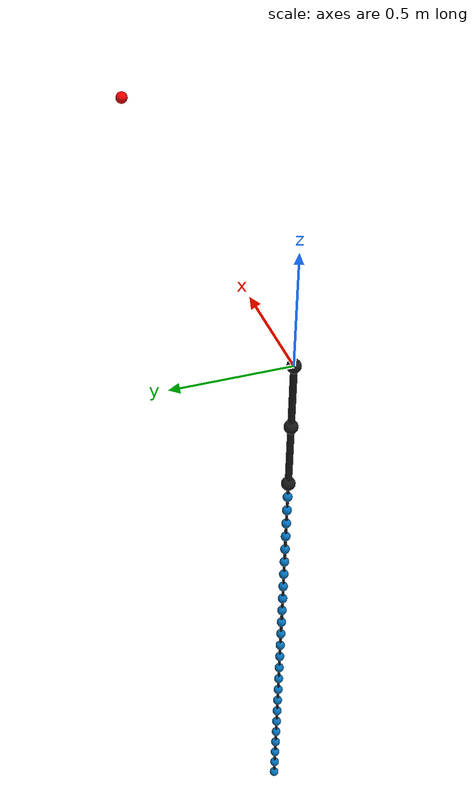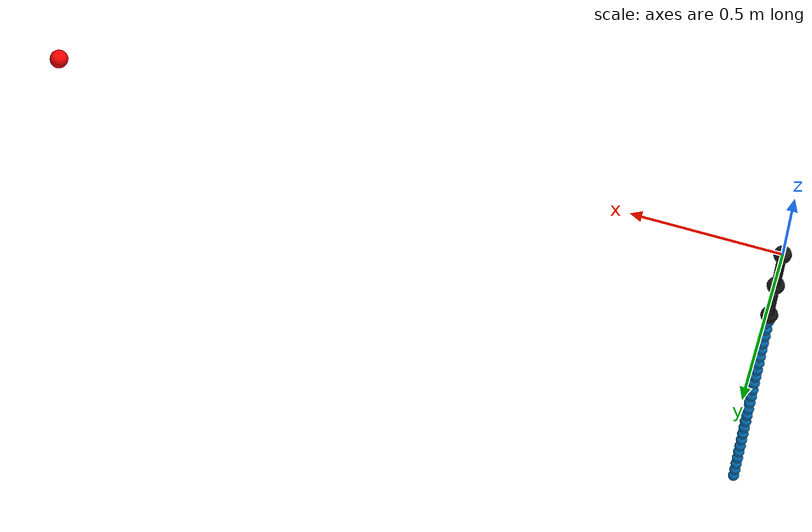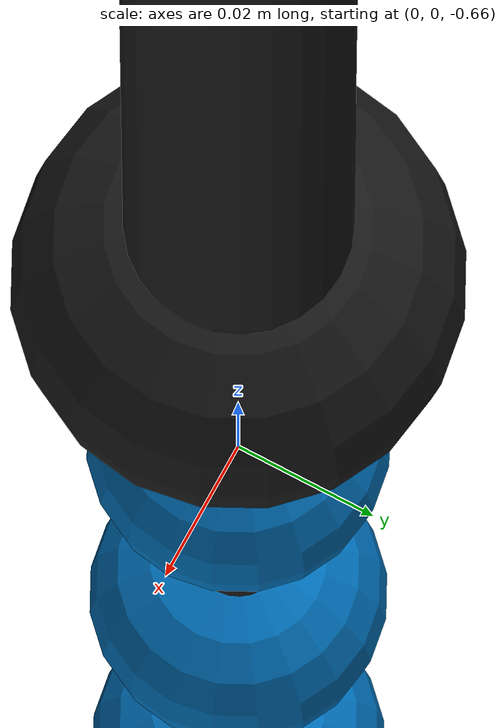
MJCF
<mujoco model="1_3D_model_w_N25">
  <compiler inertiafromgeom="auto" angle="radian" />
   <option timestep="0.0001" iterations="50" solver="PGS" integrator="Euler" gravity="0 0 -9.81" collision="all">
     <flag energy="enable" />
   </option>
   <asset>
		 <texture type="skybox" builtin="checker" rgb1="1 1 1" rgb2="1 1 1" width="200" height="200"  />
     <!-- Joint and Limb Color -->
		 <material name="JointColor" 		 rgba="0.1 0.1 0.1 1" />
		 <material name="LimbColor" 		 rgba="0.1 0.1 0.1 1" />
		 <material name="pointMassColor" rgba="0 0.4470 0.7410 1" />
		 <material name="RefMassColor" 	 rgba="0.2 0.9 0.1 1.0" />

  </asset>

	<visual>
		<global glow="1.0" fovy="45" ipd="0.0"/>
		<headlight specular="0.0 0.0 0.0" diffuse="1.0 1.0 1.0"/>
	</visual>

   <worldbody>
     <body name="cameramover" mocap="true" pos="0 0 0">
        <camera name="mycamera" pos="0.0 2.0 2.0" euler="1.5707 0 0" />
      </body>
      <body name="upperArm" pos="0 0 0" euler="0 0 0">
        <inertial pos="0 0 -0.129" mass="1.595" diaginertia="0.011917 0.011937 0.001325" />
         <geom name="shoulderGEOM" type="sphere" pos="0 0 0" material="JointColor" size="0.0294" mass="0" />
         <joint name="shoulderFlexExt" ref="0" type="hinge" stiffness="0" pos = "0 0 0" axis = "0 -1 0" />
         <joint name='shoulderAddAbd' ref='0'  type='hinge' stiffness='0' pos='0 0 0' axis='-1 0 0' />
         <joint name='shoulderMedLat' ref='0'  type='hinge' stiffness='0' pos='0 0 0' axis=' 0 0 1' />
         <site name="upperArmCOM" pos="0 0 -0.129" />
         <geom type="cylinder" fromto="0 0 0 0 0 -0.294" material="LimbColor" mass="0" size="0.0147" />
         <body name="foreArm" pos="0 0 -0.294" euler="0 0 0">
           <inertial pos="0 0 -0.112" mass="0.869" diaginertia="0.004765 0.004855 0.000472" />
            <geom name="elbowGEOM" type="sphere" pos="0 0 0" material="JointColor" size="0.0294" mass="0" />
            <joint name="elbow" ref="0" type="hinge" stiffness="0" pos="0 0 0" axis="0 -1 0" />
            <geom type="cylinder" fromto="0 0 0 0 0 -0.291" material="LimbColor" mass="0" size="0.0147" />
            <site name="foreArmCOM" pos="0 0 -0.112" />
            <geom name="geom_EE" type="sphere" pos="0 0 -0.291" material="JointColor" size="0.0294" mass="0" />
            <body name="node1" euler="0 0 0" pos="0 0 -0.291">
    					<site name='forForceSensorSite' pos='0 0 0' />   <!-- Attaching force sensor -->
              <joint name="node1JointX" type="hinge" axis="1 0 0" pos="0 0 0" springref="0" stiffness="0" damping="0" />
               <joint name="node1JointY" type="hinge" axis="0 -1 0" pos="0 0 0" springref="0" stiffness="0" damping="0" />
               <geom type="cylinder" fromto="0 0 0 0 0 -0.0720" material="LimbColor" size="0.0060000" mass="0" />
               <geom name="geom1" type="sphere" material="pointMassColor" pos="0 0 -0.0720" size="0.0200000" mass="0.0120000" />
               <body name="node2" euler="0 0 0" pos="0 0 -0.0720">
                 <joint name="node2JointX" type="hinge" axis="1 0 0" pos="0 0 0" springref="0" stiffness="0.242" damping="0.092" />
                  <joint name="node2JointY" type="hinge" axis="0 -1 0" pos="0 0 0" springref="0" stiffness="0.242" damping="0.092" />
                  <geom type="cylinder" fromto="0 0 0 0 0 -0.0720" material="LimbColor" size="0.0060000" mass="0" />
                  <geom name="geom2" type="sphere" material="pointMassColor" pos="0 0 -0.0720" size="0.0200000" mass="0.0120000" />
                  <body name="node3" euler="0 0 0" pos="0 0 -0.0720">
                    <joint name="node3JointX" type="hinge" axis="1 0 0" pos="0 0 0" springref="0" stiffness="0.242" damping="0.092" />
                     <joint name="node3JointY" type="hinge" axis="0 -1 0" pos="0 0 0" springref="0" stiffness="0.242" damping="0.092" />
                     <geom type="cylinder" fromto="0 0 0 0 0 -0.0720" material="LimbColor" size="0.0060000" mass="0" />
                     <geom name="geom3" type="sphere" material="pointMassColor" pos="0 0 -0.0720" size="0.0200000" mass="0.0120000" />
                     <body name="node4" euler="0 0 0" pos="0 0 -0.0720">
                       <joint name="node4JointX" type="hinge" axis="1 0 0" pos="0 0 0" springref="0" stiffness="0.242" damping="0.092" />
                        <joint name="node4JointY" type="hinge" axis="0 -1 0" pos="0 0 0" springref="0" stiffness="0.242" damping="0.092" />
                        <geom type="cylinder" fromto="0 0 0 0 0 -0.0720" material="LimbColor" size="0.0060000" mass="0" />
                        <geom name="geom4" type="sphere" material="pointMassColor" pos="0 0 -0.0720" size="0.0200000" mass="0.0120000" />
                        <body name="node5" euler="0 0 0" pos="0 0 -0.0720">
                          <joint name="node5JointX" type="hinge" axis="1 0 0" pos="0 0 0" springref="0" stiffness="0.242" damping="0.092" />
                           <joint name="node5JointY" type="hinge" axis="0 -1 0" pos="0 0 0" springref="0" stiffness="0.242" damping="0.092" />
                           <geom type="cylinder" fromto="0 0 0 0 0 -0.0720" material="LimbColor" size="0.0060000" mass="0" />
                           <geom name="geom5" type="sphere" material="pointMassColor" pos="0 0 -0.0720" size="0.0200000" mass="0.0120000" />
                           <body name="node6" euler="0 0 0" pos="0 0 -0.0720">
                             <joint name="node6JointX" type="hinge" axis="1 0 0" pos="0 0 0" springref="0" stiffness="0.242" damping="0.092" />
                              <joint name="node6JointY" type="hinge" axis="0 -1 0" pos="0 0 0" springref="0" stiffness="0.242" damping="0.092" />
                              <geom type="cylinder" fromto="0 0 0 0 0 -0.0720" material="LimbColor" size="0.0060000" mass="0" />
                              <geom name="geom6" type="sphere" material="pointMassColor" pos="0 0 -0.0720" size="0.0200000" mass="0.0120000" />
                              <body name="node7" euler="0 0 0" pos="0 0 -0.0720">
                                <joint name="node7JointX" type="hinge" axis="1 0 0" pos="0 0 0" springref="0" stiffness="0.242" damping="0.092" />
                                 <joint name="node7JointY" type="hinge" axis="0 -1 0" pos="0 0 0" springref="0" stiffness="0.242" damping="0.092" />
                                 <geom type="cylinder" fromto="0 0 0 0 0 -0.0720" material="LimbColor" size="0.0060000" mass="0" />
                                 <geom name="geom7" type="sphere" material="pointMassColor" pos="0 0 -0.0720" size="0.0200000" mass="0.0120000" />
                                 <body name="node8" euler="0 0 0" pos="0 0 -0.0720">
                                   <joint name="node8JointX" type="hinge" axis="1 0 0" pos="0 0 0" springref="0" stiffness="0.242" damping="0.092" />
                                    <joint name="node8JointY" type="hinge" axis="0 -1 0" pos="0 0 0" springref="0" stiffness="0.242" damping="0.092" />
                                    <geom type="cylinder" fromto="0 0 0 0 0 -0.0720" material="LimbColor" size="0.0060000" mass="0" />
                                    <geom name="geom8" type="sphere" material="pointMassColor" pos="0 0 -0.0720" size="0.0200000" mass="0.0120000" />
                                    <body name="node9" euler="0 0 0" pos="0 0 -0.0720">
                                      <joint name="node9JointX" type="hinge" axis="1 0 0" pos="0 0 0" springref="0" stiffness="0.242" damping="0.092" />
                                       <joint name="node9JointY" type="hinge" axis="0 -1 0" pos="0 0 0" springref="0" stiffness="0.242" damping="0.092" />
                                       <geom type="cylinder" fromto="0 0 0 0 0 -0.0720" material="LimbColor" size="0.0060000" mass="0" />
                                       <geom name="geom9" type="sphere" material="pointMassColor" pos="0 0 -0.0720" size="0.0200000" mass="0.0120000" />
                                       <body name="node10" euler="0 0 0" pos="0 0 -0.0720">
                                         <joint name="node10JointX" type="hinge" axis="1 0 0" pos="0 0 0" springref="0" stiffness="0.242" damping="0.092" />
                                          <joint name="node10JointY" type="hinge" axis="0 -1 0" pos="0 0 0" springref="0" stiffness="0.242" damping="0.092" />
                                          <geom type="cylinder" fromto="0 0 0 0 0 -0.0720" material="LimbColor" size="0.0060000" mass="0" />
                                          <geom name="geom10" type="sphere" material="pointMassColor" pos="0 0 -0.0720" size="0.0200000" mass="0.0120000" />
                                          <body name="node11" euler="0 0 0" pos="0 0 -0.0720">
                                            <joint name="node11JointX" type="hinge" axis="1 0 0" pos="0 0 0" springref="0" stiffness="0.242" damping="0.092" />
                                             <joint name="node11JointY" type="hinge" axis="0 -1 0" pos="0 0 0" springref="0" stiffness="0.242" damping="0.092" />
                                             <geom type="cylinder" fromto="0 0 0 0 0 -0.0720" material="LimbColor" size="0.0060000" mass="0" />
                                             <geom name="geom11" type="sphere" material="pointMassColor" pos="0 0 -0.0720" size="0.0200000" mass="0.0120000" />
                                             <body name="node12" euler="0 0 0" pos="0 0 -0.0720">
                                               <joint name="node12JointX" type="hinge" axis="1 0 0" pos="0 0 0" springref="0" stiffness="0.242" damping="0.092" />
                                                <joint name="node12JointY" type="hinge" axis="0 -1 0" pos="0 0 0" springref="0" stiffness="0.242" damping="0.092" />
                                                <geom type="cylinder" fromto="0 0 0 0 0 -0.0720" material="LimbColor" size="0.0060000" mass="0" />
                                                <geom name="geom12" type="sphere" material="pointMassColor" pos="0 0 -0.0720" size="0.0200000" mass="0.0120000" />
                                                <body name="node13" euler="0 0 0" pos="0 0 -0.0720">
                                                  <joint name="node13JointX" type="hinge" axis="1 0 0" pos="0 0 0" springref="0" stiffness="0.242" damping="0.092" />
                                                   <joint name="node13JointY" type="hinge" axis="0 -1 0" pos="0 0 0" springref="0" stiffness="0.242" damping="0.092" />
                                                   <geom type="cylinder" fromto="0 0 0 0 0 -0.0720" material="LimbColor" size="0.0060000" mass="0" />
                                                   <geom name="geom13" type="sphere" material="pointMassColor" pos="0 0 -0.0720" size="0.0200000" mass="0.0120000" />
                                                   <body name="node14" euler="0 0 0" pos="0 0 -0.0720">
                                                     <joint name="node14JointX" type="hinge" axis="1 0 0" pos="0 0 0" springref="0" stiffness="0.242" damping="0.092" />
                                                      <joint name="node14JointY" type="hinge" axis="0 -1 0" pos="0 0 0" springref="0" stiffness="0.242" damping="0.092" />
                                                      <geom type="cylinder" fromto="0 0 0 0 0 -0.0720" material="LimbColor" size="0.0060000" mass="0" />
                                                      <geom name="geom14" type="sphere" material="pointMassColor" pos="0 0 -0.0720" size="0.0200000" mass="0.0120000" />
                                                      <body name="node15" euler="0 0 0" pos="0 0 -0.0720">
                                                        <joint name="node15JointX" type="hinge" axis="1 0 0" pos="0 0 0" springref="0" stiffness="0.242" damping="0.092" />
                                                         <joint name="node15JointY" type="hinge" axis="0 -1 0" pos="0 0 0" springref="0" stiffness="0.242" damping="0.092" />
                                                         <geom type="cylinder" fromto="0 0 0 0 0 -0.0720" material="LimbColor" size="0.0060000" mass="0" />
                                                         <geom name="geom15" type="sphere" material="pointMassColor" pos="0 0 -0.0720" size="0.0200000" mass="0.0120000" />
                                                         <body name="node16" euler="0 0 0" pos="0 0 -0.0720">
                                                           <joint name="node16JointX" type="hinge" axis="1 0 0" pos="0 0 0" springref="0" stiffness="0.242" damping="0.092" />
                                                            <joint name="node16JointY" type="hinge" axis="0 -1 0" pos="0 0 0" springref="0" stiffness="0.242" damping="0.092" />
                                                            <geom type="cylinder" fromto="0 0 0 0 0 -0.0720" material="LimbColor" size="0.0060000" mass="0" />
                                                            <geom name="geom16" type="sphere" material="pointMassColor" pos="0 0 -0.0720" size="0.0200000" mass="0.0120000" />
                                                            <body name="node17" euler="0 0 0" pos="0 0 -0.0720">
                                                              <joint name="node17JointX" type="hinge" axis="1 0 0" pos="0 0 0" springref="0" stiffness="0.242" damping="0.092" />
                                                               <joint name="node17JointY" type="hinge" axis="0 -1 0" pos="0 0 0" springref="0" stiffness="0.242" damping="0.092" />
                                                               <geom type="cylinder" fromto="0 0 0 0 0 -0.0720" material="LimbColor" size="0.0060000" mass="0" />
                                                               <geom name="geom17" type="sphere" material="pointMassColor" pos="0 0 -0.0720" size="0.0200000" mass="0.0120000" />
                                                               <body name="node18" euler="0 0 0" pos="0 0 -0.0720">
                                                                 <joint name="node18JointX" type="hinge" axis="1 0 0" pos="0 0 0" springref="0" stiffness="0.242" damping="0.092" />
                                                                  <joint name="node18JointY" type="hinge" axis="0 -1 0" pos="0 0 0" springref="0" stiffness="0.242" damping="0.092" />
                                                                  <geom type="cylinder" fromto="0 0 0 0 0 -0.0720" material="LimbColor" size="0.0060000" mass="0" />
                                                                  <geom name="geom18" type="sphere" material="pointMassColor" pos="0 0 -0.0720" size="0.0200000" mass="0.0120000" />
                                                                  <body name="node19" euler="0 0 0" pos="0 0 -0.0720">
                                                                    <joint name="node19JointX" type="hinge" axis="1 0 0" pos="0 0 0" springref="0" stiffness="0.242" damping="0.092" />
                                                                     <joint name="node19JointY" type="hinge" axis="0 -1 0" pos="0 0 0" springref="0" stiffness="0.242" damping="0.092" />
                                                                     <geom type="cylinder" fromto="0 0 0 0 0 -0.0720" material="LimbColor" size="0.0060000" mass="0" />
                                                                     <geom name="geom19" type="sphere" material="pointMassColor" pos="0 0 -0.0720" size="0.0200000" mass="0.0120000" />
                                                                     <body name="node20" euler="0 0 0" pos="0 0 -0.0720">
                                                                       <joint name="node20JointX" type="hinge" axis="1 0 0" pos="0 0 0" springref="0" stiffness="0.242" damping="0.092" />
                                                                        <joint name="node20JointY" type="hinge" axis="0 -1 0" pos="0 0 0" springref="0" stiffness="0.242" damping="0.092" />
                                                                        <geom type="cylinder" fromto="0 0 0 0 0 -0.0720" material="LimbColor" size="0.0060000" mass="0" />
                                                                        <geom name="geom20" type="sphere" material="pointMassColor" pos="0 0 -0.0720" size="0.0200000" mass="0.0120000" />
                                                                        <body name="node21" euler="0 0 0" pos="0 0 -0.0720">
                                                                          <joint name="node21JointX" type="hinge" axis="1 0 0" pos="0 0 0" springref="0" stiffness="0.242" damping="0.092" />
                                                                           <joint name="node21JointY" type="hinge" axis="0 -1 0" pos="0 0 0" springref="0" stiffness="0.242" damping="0.092" />
                                                                           <geom type="cylinder" fromto="0 0 0 0 0 -0.0720" material="LimbColor" size="0.0060000" mass="0" />
                                                                           <geom name="geom21" type="sphere" material="pointMassColor" pos="0 0 -0.0720" size="0.0200000" mass="0.0120000" />
                                                                           <body name="node22" euler="0 0 0" pos="0 0 -0.0720">
                                                                             <joint name="node22JointX" type="hinge" axis="1 0 0" pos="0 0 0" springref="0" stiffness="0.242" damping="0.092" />
                                                                              <joint name="node22JointY" type="hinge" axis="0 -1 0" pos="0 0 0" springref="0" stiffness="0.242" damping="0.092" />
                                                                              <geom type="cylinder" fromto="0 0 0 0 0 -0.0720" material="LimbColor" size="0.0060000" mass="0" />
                                                                              <geom name="geom22" type="sphere" material="pointMassColor" pos="0 0 -0.0720" size="0.0200000" mass="0.0120000" />
                                                                              <body name="node23" euler="0 0 0" pos="0 0 -0.0720">
                                                                                <joint name="node23JointX" type="hinge" axis="1 0 0" pos="0 0 0" springref="0" stiffness="0.242" damping="0.092" />
                                                                                 <joint name="node23JointY" type="hinge" axis="0 -1 0" pos="0 0 0" springref="0" stiffness="0.242" damping="0.092" />
                                                                                 <geom type="cylinder" fromto="0 0 0 0 0 -0.0720" material="LimbColor" size="0.0060000" mass="0" />
                                                                                 <geom name="geom23" type="sphere" material="pointMassColor" pos="0 0 -0.0720" size="0.0200000" mass="0.0120000" />
                                                                                 <body name="node24" euler="0 0 0" pos="0 0 -0.0720">
                                                                                   <joint name="node24JointX" type="hinge" axis="1 0 0" pos="0 0 0" springref="0" stiffness="0.242" damping="0.092" />
                                                                                    <joint name="node24JointY" type="hinge" axis="0 -1 0" pos="0 0 0" springref="0" stiffness="0.242" damping="0.092" />
                                                                                    <geom type="cylinder" fromto="0 0 0 0 0 -0.0720" material="LimbColor" size="0.0060000" mass="0" />
                                                                                    <geom name="geom24" type="sphere" material="pointMassColor" pos="0 0 -0.0720" size="0.0200000" mass="0.0120000" />
                                                                                    <body name="node25" euler="0 0 0" pos="0 0 -0.0720">
                                                                                      <joint name="node25JointX" type="hinge" axis="1 0 0" pos="0 0 0" springref="0" stiffness="0.242" damping="0.092" />
                                                                                       <joint name="node25JointY" type="hinge" axis="0 -1 0" pos="0 0 0" springref="0" stiffness="0.242" damping="0.092" />
                                                                                       <geom type="cylinder" fromto="0 0 0 0 0 -0.0720" material="LimbColor" size="0.0060000" mass="0" />
                                                                                       <geom name="geom25Tip" type="sphere" material="pointMassColor" pos="0 0 -0.0720" size="0.0200000" mass="0.0120000" />
                                                                                    </body>
                                                                                 </body>
                                                                              </body>
                                                                           </body>
                                                                        </body>
                                                                     </body>
                                                                  </body>
                                                               </body>
                                                            </body>
                                                         </body>
                                                      </body>
                                                   </body>
                                                </body>
                                             </body>
                                          </body>
                                       </body>
                                    </body>
                                 </body>
                              </body>
                           </body>
                        </body>
                     </body>
                  </body>
               </body>
            </body>
            <!-- === [ N, L, M, k, b, rho ] = [25,1.800000,0.300000,0.242000,0.092000,1.000000] -->
         </body>
      </body>
      <geom name="target" type="sphere" pos="2.395 0 0" rgba="1 0 0 1" mass="0" size="0.03"  />
   </worldbody>

   <!-- BACKUP-->
    <sensor>
  			<force name = 'wristForceSensorSite' site = 'forForceSensorSite' />
  	</sensor>

   <actuator>
      <motor joint="shoulderFlexExt" name="shoulderFlexExtTorqueMotor" forcelimited="false" />
      <motor joint="shoulderAddAbd" name="shoulderAddAbdTorqueMotor" forcelimited="false" />
      <motor joint="shoulderMedLat" name="shoulderMedLatTorqueMotor" forcelimited="false" />
      <motor joint="elbow" name="elbowTorqueMotor" forcelimited="false" />
   </actuator>
</mujoco>
